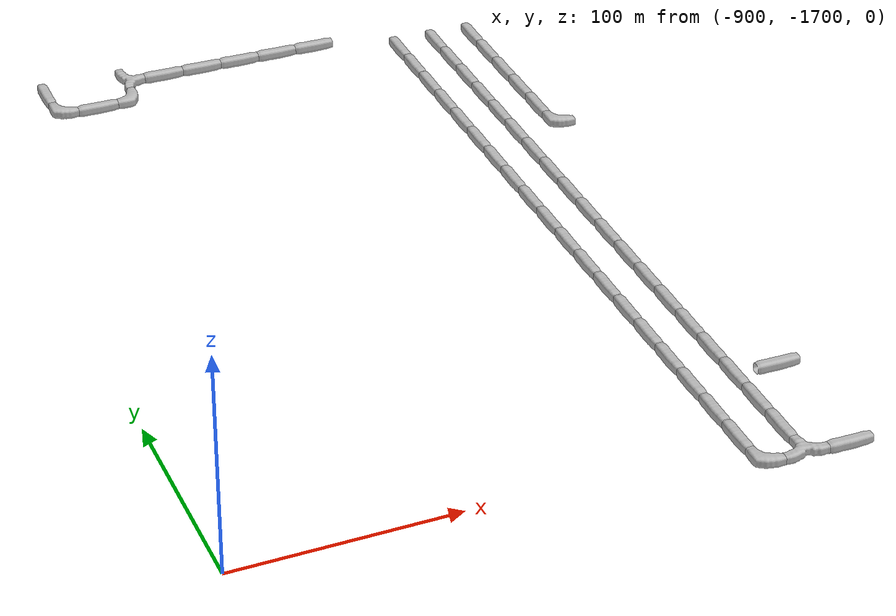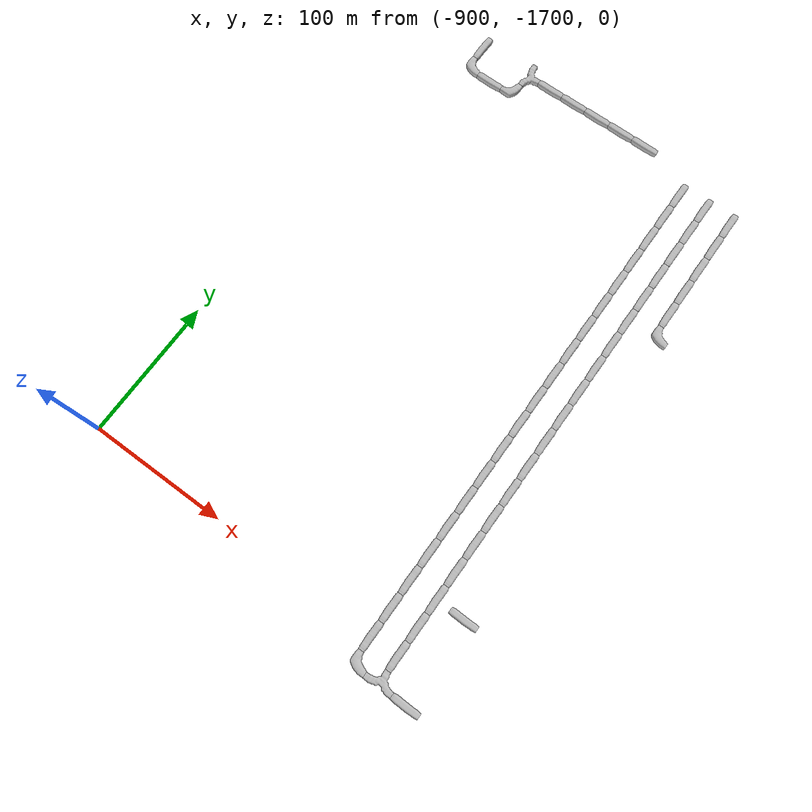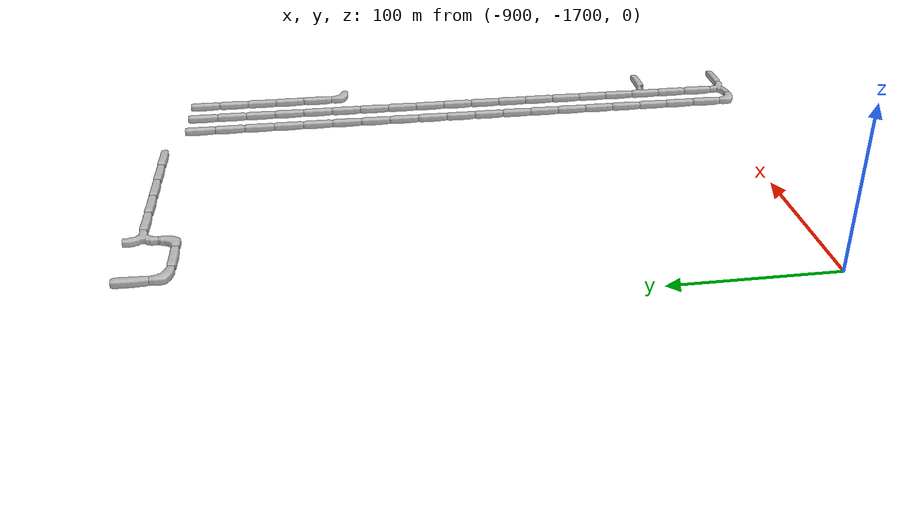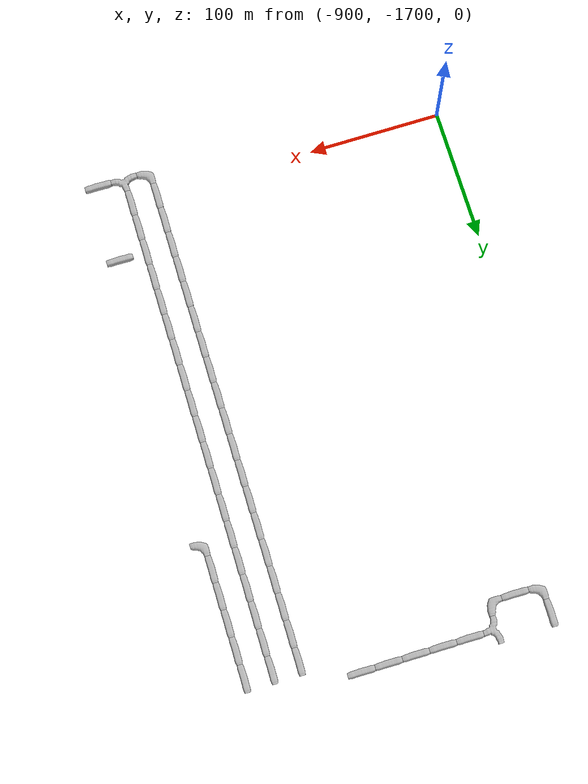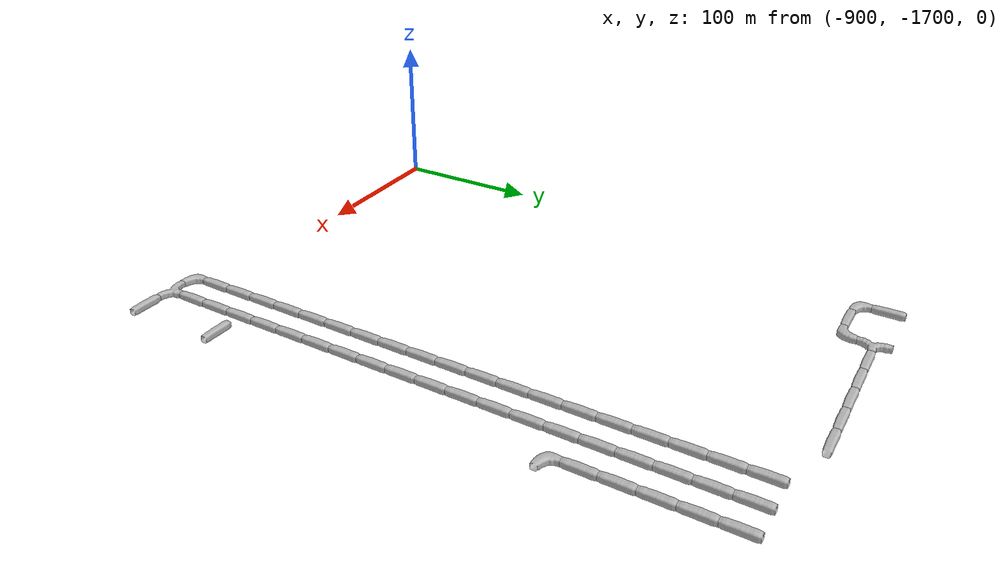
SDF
<sdf version="1.6">
 <world name="cave_32000_0">
  <include>
   <static>true</static>
   <name>cave_-33_-67</name>
   <pose>-660 -1340 0 0 0 0.0</pose>
   <uri>model://cave_straight_20m</uri>
  </include>
  <include>
   <static>true</static>
   <name>cave_-33_-68</name>
   <pose>-660 -1360 0 0 0 0.0</pose>
   <uri>model://cave_straight_20m</uri>
  </include>
  <include>
   <static>true</static>
   <name>cave_-33_-69</name>
   <pose>-660 -1380 0 0 0 0.0</pose>
   <uri>model://cave_straight_20m</uri>
  </include>
  <include>
   <static>true</static>
   <name>cave_-33_-70</name>
   <pose>-660 -1400 0 0 0 0.0</pose>
   <uri>model://cave_straight_20m</uri>
  </include>
  <include>
   <static>true</static>
   <name>cave_-33_-71</name>
   <pose>-660 -1420 0 0 0 0.0</pose>
   <uri>model://cave_straight_20m</uri>
  </include>
  <include>
   <static>true</static>
   <name>cave_-33_-72</name>
   <pose>-660 -1440 0 0 0 0.0</pose>
   <uri>model://cave_straight_20m</uri>
  </include>
  <include>
   <static>true</static>
   <name>cave_-33_-73</name>
   <pose>-660 -1460 0 0 0 0.0</pose>
   <uri>model://cave_straight_20m</uri>
  </include>
  <include>
   <static>true</static>
   <name>cave_-33_-74</name>
   <pose>-660 -1480 0 0 0 0.0</pose>
   <uri>model://cave_straight_20m</uri>
  </include>
  <include>
   <static>true</static>
   <name>cave_-33_-75</name>
   <pose>-660 -1500 0 0 0 0.0</pose>
   <uri>model://cave_straight_20m</uri>
  </include>
  <include>
   <static>true</static>
   <name>cave_-33_-76</name>
   <pose>-660 -1520 0 0 0 0.0</pose>
   <uri>model://cave_straight_20m</uri>
  </include>
  <include>
   <static>true</static>
   <name>cave_-33_-77</name>
   <pose>-660 -1540 0 0 0 0.0</pose>
   <uri>model://cave_straight_20m</uri>
  </include>
  <include>
   <static>true</static>
   <name>cave_-33_-78</name>
   <pose>-660 -1560 0 0 0 0.0</pose>
   <uri>model://cave_straight_20m</uri>
  </include>
  <include>
   <static>true</static>
   <name>cave_-33_-79</name>
   <pose>-660 -1580 0 0 0 0.0</pose>
   <uri>model://cave_straight_20m</uri>
  </include>
  <include>
   <static>true</static>
   <name>cave_-33_-80</name>
   <pose>-660 -1600 0 0 0 0.0</pose>
   <uri>model://cave_straight_20m</uri>
  </include>
  <include>
   <static>true</static>
   <name>cave_-33_-81</name>
   <pose>-660 -1620 0 0 0 0.0</pose>
   <uri>model://cave_straight_20m</uri>
  </include>
  <include>
   <static>true</static>
   <name>cave_-33_-82</name>
   <pose>-660 -1640 0 0 0 0.0</pose>
   <uri>model://cave_straight_20m</uri>
  </include>
  <include>
   <static>true</static>
   <name>cave_-33_-83</name>
   <pose>-660 -1660 0 0 0 0.0</pose>
   <uri>model://cave_straight_20m</uri>
  </include>
  <include>
   <static>true</static>
   <name>cave_-33_-84</name>
   <pose>-660 -1680 0 0 0 0.0</pose>
   <uri>model://cave_straight_20m</uri>
  </include>
  <include>
   <static>true</static>
   <name>cave_-33_-85</name>
   <pose>-660 -1700 0 0 0 0.0</pose>
   <uri>model://cave_straight_20m</uri>
  </include>
  <include>
   <static>true</static>
   <name>cave_-33_-86</name>
   <pose>-660 -1720 0 0 0 0.0</pose>
   <uri>model://cave_3way_20m</uri>
  </include>
  <include>
   <static>true</static>
   <name>cave_-32_-86</name>
   <pose>-640 -1720 0 0 0 1.5707963267948966</pose>
   <uri>model://cave_straight_20m</uri>
  </include>
  <include>
   <static>true</static>
   <name>cave_-32_-83</name>
   <pose>-640 -1660 0 0 0 1.5707963267948966</pose>
   <uri>model://cave_straight_20m</uri>
  </include>
  <include>
   <static>true</static>
   <name>cave_-32_-72</name>
   <pose>-640 -1440 0 0 0 0.0</pose>
   <uri>model://cave_L_20m</uri>
  </include>
  <include>
   <static>true</static>
   <name>cave_-32_-71</name>
   <pose>-640 -1420 0 0 0 0.0</pose>
   <uri>model://cave_straight_20m</uri>
  </include>
  <include>
   <static>true</static>
   <name>cave_-32_-70</name>
   <pose>-640 -1400 0 0 0 0.0</pose>
   <uri>model://cave_straight_20m</uri>
  </include>
  <include>
   <static>true</static>
   <name>cave_-32_-69</name>
   <pose>-640 -1380 0 0 0 0.0</pose>
   <uri>model://cave_straight_20m</uri>
  </include>
  <include>
   <static>true</static>
   <name>cave_-32_-68</name>
   <pose>-640 -1360 0 0 0 0.0</pose>
   <uri>model://cave_straight_20m</uri>
  </include>
  <include>
   <static>true</static>
   <name>cave_-32_-67</name>
   <pose>-640 -1340 0 0 0 0.0</pose>
   <uri>model://cave_straight_20m</uri>
  </include>
  <include>
   <static>true</static>
   <name>cave_-34_-86</name>
   <pose>-680 -1720 0 0 0 0.0</pose>
   <uri>model://cave_L_20m</uri>
  </include>
  <include>
   <static>true</static>
   <name>cave_-34_-85</name>
   <pose>-680 -1700 0 0 0 0.0</pose>
   <uri>model://cave_straight_20m</uri>
  </include>
  <include>
   <static>true</static>
   <name>cave_-34_-84</name>
   <pose>-680 -1680 0 0 0 0.0</pose>
   <uri>model://cave_straight_20m</uri>
  </include>
  <include>
   <static>true</static>
   <name>cave_-34_-83</name>
   <pose>-680 -1660 0 0 0 0.0</pose>
   <uri>model://cave_straight_20m</uri>
  </include>
  <include>
   <static>true</static>
   <name>cave_-34_-82</name>
   <pose>-680 -1640 0 0 0 0.0</pose>
   <uri>model://cave_straight_20m</uri>
  </include>
  <include>
   <static>true</static>
   <name>cave_-34_-81</name>
   <pose>-680 -1620 0 0 0 0.0</pose>
   <uri>model://cave_straight_20m</uri>
  </include>
  <include>
   <static>true</static>
   <name>cave_-34_-80</name>
   <pose>-680 -1600 0 0 0 0.0</pose>
   <uri>model://cave_straight_20m</uri>
  </include>
  <include>
   <static>true</static>
   <name>cave_-34_-79</name>
   <pose>-680 -1580 0 0 0 0.0</pose>
   <uri>model://cave_straight_20m</uri>
  </include>
  <include>
   <static>true</static>
   <name>cave_-34_-78</name>
   <pose>-680 -1560 0 0 0 0.0</pose>
   <uri>model://cave_straight_20m</uri>
  </include>
  <include>
   <static>true</static>
   <name>cave_-34_-77</name>
   <pose>-680 -1540 0 0 0 0.0</pose>
   <uri>model://cave_straight_20m</uri>
  </include>
  <include>
   <static>true</static>
   <name>cave_-34_-76</name>
   <pose>-680 -1520 0 0 0 0.0</pose>
   <uri>model://cave_straight_20m</uri>
  </include>
  <include>
   <static>true</static>
   <name>cave_-34_-75</name>
   <pose>-680 -1500 0 0 0 0.0</pose>
   <uri>model://cave_straight_20m</uri>
  </include>
  <include>
   <static>true</static>
   <name>cave_-34_-74</name>
   <pose>-680 -1480 0 0 0 0.0</pose>
   <uri>model://cave_straight_20m</uri>
  </include>
  <include>
   <static>true</static>
   <name>cave_-34_-73</name>
   <pose>-680 -1460 0 0 0 0.0</pose>
   <uri>model://cave_straight_20m</uri>
  </include>
  <include>
   <static>true</static>
   <name>cave_-34_-72</name>
   <pose>-680 -1440 0 0 0 0.0</pose>
   <uri>model://cave_straight_20m</uri>
  </include>
  <include>
   <static>true</static>
   <name>cave_-34_-71</name>
   <pose>-680 -1420 0 0 0 0.0</pose>
   <uri>model://cave_straight_20m</uri>
  </include>
  <include>
   <static>true</static>
   <name>cave_-34_-70</name>
   <pose>-680 -1400 0 0 0 0.0</pose>
   <uri>model://cave_straight_20m</uri>
  </include>
  <include>
   <static>true</static>
   <name>cave_-34_-69</name>
   <pose>-680 -1380 0 0 0 0.0</pose>
   <uri>model://cave_straight_20m</uri>
  </include>
  <include>
   <static>true</static>
   <name>cave_-34_-68</name>
   <pose>-680 -1360 0 0 0 0.0</pose>
   <uri>model://cave_straight_20m</uri>
  </include>
  <include>
   <static>true</static>
   <name>cave_-34_-67</name>
   <pose>-680 -1340 0 0 0 0.0</pose>
   <uri>model://cave_straight_20m</uri>
  </include>
  <include>
   <static>true</static>
   <name>cave_-41_-66</name>
   <pose>-820 -1320 0 0 0 -1.5707963267948966</pose>
   <uri>model://cave_3way_20m</uri>
  </include>
  <include>
   <static>true</static>
   <name>cave_-40_-66</name>
   <pose>-800 -1320 0 0 0 1.5707963267948966</pose>
   <uri>model://cave_straight_20m</uri>
  </include>
  <include>
   <static>true</static>
   <name>cave_-39_-66</name>
   <pose>-780 -1320 0 0 0 1.5707963267948966</pose>
   <uri>model://cave_straight_20m</uri>
  </include>
  <include>
   <static>true</static>
   <name>cave_-38_-66</name>
   <pose>-760 -1320 0 0 0 1.5707963267948966</pose>
   <uri>model://cave_straight_20m</uri>
  </include>
  <include>
   <static>true</static>
   <name>cave_-37_-66</name>
   <pose>-740 -1320 0 0 0 1.5707963267948966</pose>
   <uri>model://cave_straight_20m</uri>
  </include>
  <include>
   <static>true</static>
   <name>cave_-36_-66</name>
   <pose>-720 -1320 0 0 0 1.5707963267948966</pose>
   <uri>model://cave_straight_20m</uri>
  </include>
  <include>
   <static>true</static>
   <name>cave_-41_-67</name>
   <pose>-820 -1340 0 0 0 1.5707963267948966</pose>
   <uri>model://cave_L_20m</uri>
  </include>
  <include>
   <static>true</static>
   <name>cave_-42_-67</name>
   <pose>-840 -1340 0 0 0 1.5707963267948966</pose>
   <uri>model://cave_straight_20m</uri>
  </include>
  <include>
   <static>true</static>
   <name>cave_-43_-67</name>
   <pose>-860 -1340 0 0 0 0.0</pose>
   <uri>model://cave_L_20m</uri>
  </include>
  <include>
   <static>true</static>
   <name>cave_-43_-66</name>
   <pose>-860 -1320 0 0 0 0.0</pose>
   <uri>model://cave_straight_20m</uri>
  </include>
 </world>
</sdf>
